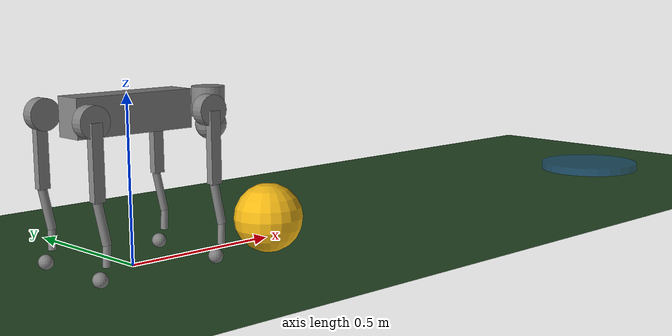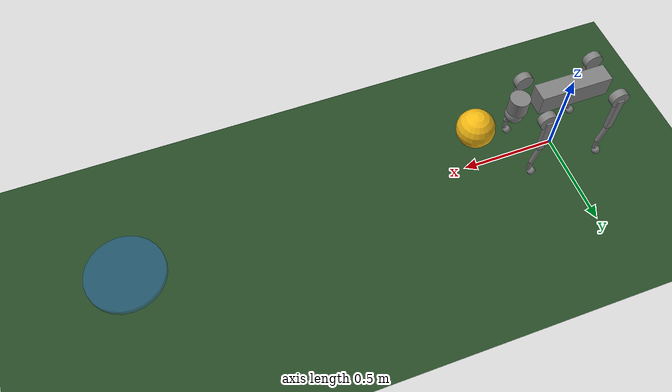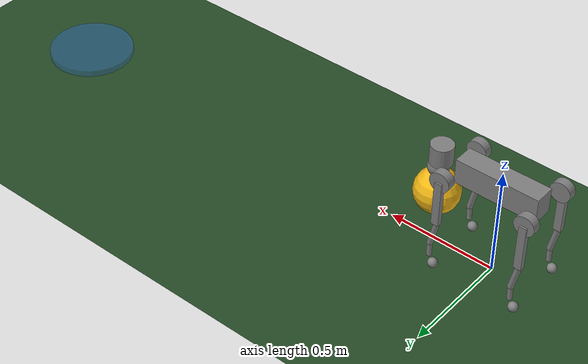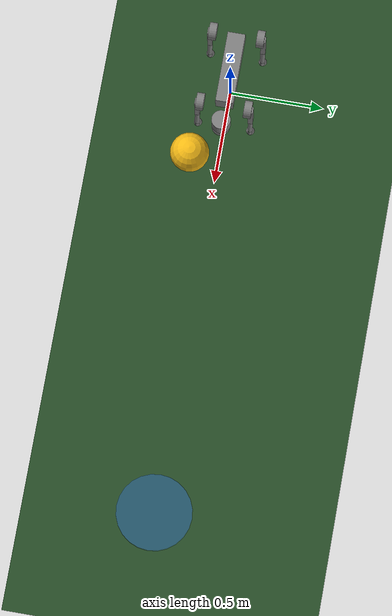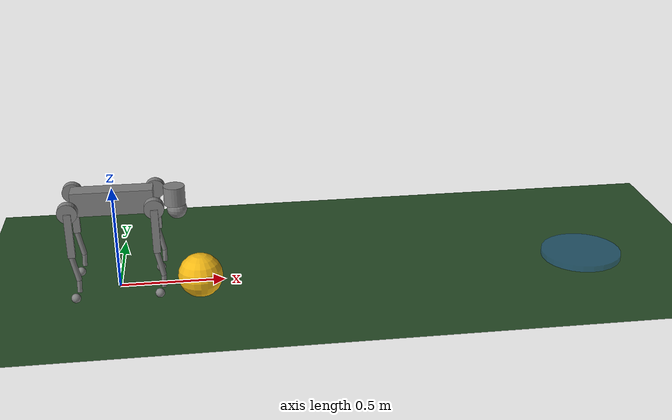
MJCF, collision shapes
<mujoco model="go2 soccer shooting">
  <include file="go2_soccer_base.xml"/>

  <statistic center="0.8 0 0.2" extent="2.8"/>

  <visual>
    <headlight diffuse="0.6 0.6 0.6" ambient="0.35 0.35 0.35" specular="0 0 0"/>
    <rgba haze="0.15 0.22 0.28 1"/>
    <global azimuth="-130" elevation="-18"/>
  </visual>

  <asset>
    <texture type="skybox" builtin="gradient" rgb1="0.34 0.48 0.62" rgb2="0.02 0.03 0.04" width="512" height="3072"/>
    <texture type="2d" name="pitch_tex" builtin="checker" mark="edge" rgb1="0.18 0.35 0.18" rgb2="0.12 0.24 0.12"
      markrgb="0.75 0.75 0.75" width="300" height="300"/>
    <material name="pitch" texture="pitch_tex" texuniform="true" texrepeat="7 7" reflectance="0.08"/>
    <material name="ball_yellow" rgba="0.95 0.72 0.08 1"/>
    <material name="goal_blue" rgba="0.15 0.45 0.95 0.35"/>
  </asset>

  <worldbody>
    <light pos="0 0 3" dir="0 0 -1" directional="true"/>
    <geom name="floor" size="0 0 0.05" type="plane" material="pitch" friction="0.95 0.03 0.003"/>

    <body name="ball" pos="0.385 -0.152 0.105">
      <freejoint name="ball_free"/>
      <geom name="ball_geom" type="sphere" size="0.105" mass="0.43" material="ball_yellow"
        friction="0.82 0.04 0.002" condim="6" priority="2"/>
    </body>

    <body name="target" pos="2.3 0 0.02">
      <geom name="goal_disc" type="cylinder" size="0.20 0.015" material="goal_blue" contype="0" conaffinity="0"/>
    </body>
  </worldbody>
</mujoco>

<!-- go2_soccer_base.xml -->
<mujoco model="go2">
  <compiler angle="radian" autolimits="true"/>

  <option cone="elliptic" impratio="100"/>

  <default>
    <default class="go2">
      <geom friction="0.6" margin="0.001" condim="1"/>
      <joint axis="0 1 0" damping="2" armature="0.01" frictionloss="0.2"/>
      <motor ctrlrange="-23.7 23.7"/>
      <default class="abduction">
        <joint axis="1 0 0" range="-1.0472 1.0472"/>
      </default>
      <default class="hip">
        <default class="front_hip">
          <joint range="-1.5708 3.4907"/>
        </default>
        <default class="back_hip">
          <joint range="-0.5236 4.5379"/>
        </default>
      </default>
      <default class="knee">
        <joint range="-2.7227 -0.83776"/>
        <motor ctrlrange="-45.43 45.43"/>
      </default>
      <default class="visual">
        <geom type="mesh" contype="0" conaffinity="0" group="2"/>
      </default>
      <default class="collision">
        <geom group="3"/>
        <default class="foot">
          <geom size="0.022" pos="-0.002 0 -0.213" priority="1" solimp="0.015 1 0.022" condim="6"
            friction="0.8 0.02 0.01"/>
        </default>
      </default>
    </default>
  </default>

  <asset>
    <material name="metal" rgba=".9 .95 .95 1"/>
    <material name="black" rgba="0 0 0 1"/>
    <material name="white" rgba="1 1 1 1"/>
    <material name="gray" rgba="0.671705 0.692426 0.774270 1"/>

    <mesh file="unitree_go2/assets/base_0.obj"/>
    <mesh file="unitree_go2/assets/base_1.obj"/>
    <mesh file="unitree_go2/assets/base_2.obj"/>
    <mesh file="unitree_go2/assets/base_3.obj"/>
    <mesh file="unitree_go2/assets/base_4.obj"/>
    <mesh file="unitree_go2/assets/hip_0.obj"/>
    <mesh file="unitree_go2/assets/hip_1.obj"/>
    <mesh file="unitree_go2/assets/thigh_0.obj"/>
    <mesh file="unitree_go2/assets/thigh_1.obj"/>
    <mesh file="unitree_go2/assets/thigh_mirror_0.obj"/>
    <mesh file="unitree_go2/assets/thigh_mirror_1.obj"/>
    <mesh file="unitree_go2/assets/calf_0.obj"/>
    <mesh file="unitree_go2/assets/calf_1.obj"/>
    <mesh file="unitree_go2/assets/calf_mirror_0.obj"/>
    <mesh file="unitree_go2/assets/calf_mirror_1.obj"/>
    <mesh file="unitree_go2/assets/foot.obj"/>
  </asset>

  <worldbody>
    <body name="base" pos="0 0 0.445" childclass="go2">
      <inertial pos="0.021112 0 -0.005366" quat="-0.000543471 0.713435 -0.00173769 0.700719" mass="6.921"
        diaginertia="0.107027 0.0980771 0.0244531"/>
      <freejoint/>
      <geom mesh="base_0" material="black" class="visual"/>
      <geom mesh="base_1" material="black" class="visual"/>
      <geom mesh="base_2" material="black" class="visual"/>
      <geom mesh="base_3" material="white" class="visual"/>
      <geom mesh="base_4" material="gray" class="visual"/>
      <geom size="0.1881 0.04675 0.057" type="box" class="collision"/>
      <geom size="0.05 0.045" pos="0.285 0 0.01" type="cylinder" class="collision"/>
      <geom size="0.047" pos="0.293 0 -0.06" class="collision"/>
      <site name="imu" pos="-0.02557 0 0.04232"/>
      <body name="FL_hip" pos="0.1934 0.0465 0">
        <inertial pos="-0.0054 0.00194 -0.000105" quat="0.497014 0.499245 0.505462 0.498237" mass="0.678"
          diaginertia="0.00088403 0.000596003 0.000479967"/>
        <joint name="FL_hip_joint" class="abduction"/>
        <geom mesh="hip_0" material="metal" class="visual"/>
        <geom mesh="hip_1" material="gray" class="visual"/>
        <geom size="0.046 0.02" pos="0 0.08 0" quat="1 1 0 0" type="cylinder" class="collision"/>
        <body name="FL_thigh" pos="0 0.0955 0">
          <inertial pos="-0.00374 -0.0223 -0.0327" quat="0.829533 0.0847635 -0.0200632 0.551623" mass="1.152"
            diaginertia="0.00594973 0.00584149 0.000878787"/>
          <joint name="FL_thigh_joint" class="front_hip"/>
          <geom mesh="thigh_0" material="metal" class="visual"/>
          <geom mesh="thigh_1" material="gray" class="visual"/>
          <geom size="0.1065 0.01225 0.017" pos="0 0 -0.1065" quat="0.707107 0 0.707107 0" type="box"
            class="collision" contype="0" conaffinity="0"/>
          <body name="FL_calf" pos="0 0 -0.213">
            <inertial pos="0.00629595 -0.000622121 -0.141417" quat="0.710672 0.00154099 -0.00450087 0.703508"
              mass="0.241352" diaginertia="0.0014901 0.00146356 5.31397e-05"/>
            <joint name="FL_calf_joint" class="knee"/>
            <geom mesh="calf_0" material="gray" class="visual"/>
            <geom mesh="calf_1" material="black" class="visual"/>
            <geom size="0.012 0.06" pos="0.008 0 -0.06" quat="0.994493 0 -0.104807 0" type="cylinder"
              class="collision"/>
            <geom size="0.011 0.0325" pos="0.02 0 -0.148" quat="0.999688 0 0.0249974 0" type="cylinder"
              class="collision"/>
            <geom pos="0 0 -0.213" mesh="foot" class="visual" material="black"/>
            <geom name="FL" class="foot"/>
          </body>
        </body>
      </body>
      <body name="FR_hip" pos="0.1934 -0.0465 0">
        <inertial pos="-0.0054 -0.00194 -0.000105" quat="0.498237 0.505462 0.499245 0.497014" mass="0.678"
          diaginertia="0.00088403 0.000596003 0.000479967"/>
        <joint name="FR_hip_joint" class="abduction"/>
        <geom mesh="hip_0" material="metal" class="visual" quat="4.63268e-05 1 0 0"/>
        <geom mesh="hip_1" material="gray" class="visual" quat="4.63268e-05 1 0 0"/>
        <geom size="0.046 0.02" pos="0 -0.08 0" quat="0.707107 0.707107 0 0" type="cylinder" class="collision"/>
        <body name="FR_thigh" pos="0 -0.0955 0">
          <inertial pos="-0.00374 0.0223 -0.0327" quat="0.551623 -0.0200632 0.0847635 0.829533" mass="1.152"
            diaginertia="0.00594973 0.00584149 0.000878787"/>
          <joint name="FR_thigh_joint" class="front_hip"/>
          <geom mesh="thigh_mirror_0" material="metal" class="visual"/>
          <geom mesh="thigh_mirror_1" material="gray" class="visual"/>
          <geom size="0.1065 0.01225 0.017" pos="0 0 -0.1065" quat="0.707107 0 0.707107 0" type="box"
            class="collision" contype="0" conaffinity="0"/>
          <body name="FR_calf" pos="0 0 -0.213">
            <inertial pos="0.00629595 0.000622121 -0.141417" quat="0.703508 -0.00450087 0.00154099 0.710672"
              mass="0.241352" diaginertia="0.0014901 0.00146356 5.31397e-05"/>
            <joint name="FR_calf_joint" class="knee"/>
            <geom mesh="calf_mirror_0" material="gray" class="visual"/>
            <geom mesh="calf_mirror_1" material="black" class="visual"/>
            <geom size="0.013 0.06" pos="0.01 0 -0.06" quat="0.995004 0 -0.0998334 0" type="cylinder"
              class="collision" contype="0" conaffinity="0"/>
            <geom size="0.011 0.0325" pos="0.02 0 -0.148" quat="0.999688 0 0.0249974 0" type="cylinder"
              class="collision" contype="0" conaffinity="0"/>
            <geom pos="0 0 -0.213" mesh="foot" class="visual" material="black"/>
            <geom name="FR" class="foot"/>
          </body>
        </body>
      </body>
      <body name="RL_hip" pos="-0.1934 0.0465 0">
        <inertial pos="0.0054 0.00194 -0.000105" quat="0.505462 0.498237 0.497014 0.499245" mass="0.678"
          diaginertia="0.00088403 0.000596003 0.000479967"/>
        <joint name="RL_hip_joint" class="abduction"/>
        <geom mesh="hip_0" material="metal" class="visual" quat="4.63268e-05 0 1 0"/>
        <geom mesh="hip_1" material="gray" class="visual" quat="4.63268e-05 0 1 0"/>
        <geom size="0.046 0.02" pos="0 0.08 0" quat="0.707107 0.707107 0 0" type="cylinder" class="collision"/>
        <body name="RL_thigh" pos="0 0.0955 0">
          <inertial pos="-0.00374 -0.0223 -0.0327" quat="0.829533 0.0847635 -0.0200632 0.551623" mass="1.152"
            diaginertia="0.00594973 0.00584149 0.000878787"/>
          <joint name="RL_thigh_joint" class="back_hip"/>
          <geom mesh="thigh_0" material="metal" class="visual"/>
          <geom mesh="thigh_1" material="gray" class="visual"/>
          <geom size="0.1065 0.01225 0.017" pos="0 0 -0.1065" quat="0.707107 0 0.707107 0" type="box"
            class="collision"/>
          <body name="RL_calf" pos="0 0 -0.213">
            <inertial pos="0.00629595 -0.000622121 -0.141417" quat="0.710672 0.00154099 -0.00450087 0.703508"
              mass="0.241352" diaginertia="0.0014901 0.00146356 5.31397e-05"/>
            <joint name="RL_calf_joint" class="knee"/>
            <geom mesh="calf_0" material="gray" class="visual"/>
            <geom mesh="calf_1" material="black" class="visual"/>
            <geom size="0.013 0.06" pos="0.01 0 -0.06" quat="0.995004 0 -0.0998334 0" type="cylinder"
              class="collision"/>
            <geom size="0.011 0.0325" pos="0.02 0 -0.148" quat="0.999688 0 0.0249974 0" type="cylinder"
              class="collision"/>
            <geom pos="0 0 -0.213" mesh="foot" class="visual" material="black"/>
            <geom name="RL" class="foot"/>
          </body>
        </body>
      </body>
      <body name="RR_hip" pos="-0.1934 -0.0465 0">
        <inertial pos="0.0054 -0.00194 -0.000105" quat="0.499245 0.497014 0.498237 0.505462" mass="0.678"
          diaginertia="0.00088403 0.000596003 0.000479967"/>
        <joint name="RR_hip_joint" class="abduction"/>
        <geom mesh="hip_0" material="metal" class="visual" quat="2.14617e-09 4.63268e-05 4.63268e-05 -1"/>
        <geom mesh="hip_1" material="gray" class="visual" quat="2.14617e-09 4.63268e-05 4.63268e-05 -1"/>
        <geom size="0.046 0.02" pos="0 -0.08 0" quat="0.707107 0.707107 0 0" type="cylinder" class="collision"/>
        <body name="RR_thigh" pos="0 -0.0955 0">
          <inertial pos="-0.00374 0.0223 -0.0327" quat="0.551623 -0.0200632 0.0847635 0.829533" mass="1.152"
            diaginertia="0.00594973 0.00584149 0.000878787"/>
          <joint name="RR_thigh_joint" class="back_hip"/>
          <geom mesh="thigh_mirror_0" material="metal" class="visual"/>
          <geom mesh="thigh_mirror_1" material="gray" class="visual"/>
          <geom size="0.1065 0.01225 0.017" pos="0 0 -0.1065" quat="0.707107 0 0.707107 0" type="box"
            class="collision"/>
          <body name="RR_calf" pos="0 0 -0.213">
            <inertial pos="0.00629595 0.000622121 -0.141417" quat="0.703508 -0.00450087 0.00154099 0.710672"
              mass="0.241352" diaginertia="0.0014901 0.00146356 5.31397e-05"/>
            <joint name="RR_calf_joint" class="knee"/>
            <geom mesh="calf_mirror_0" material="gray" class="visual"/>
            <geom mesh="calf_mirror_1" material="black" class="visual"/>
            <geom size="0.013 0.06" pos="0.01 0 -0.06" quat="0.995004 0 -0.0998334 0" type="cylinder"
              class="collision"/>
            <geom size="0.011 0.0325" pos="0.02 0 -0.148" quat="0.999688 0 0.0249974 0" type="cylinder"
              class="collision"/>
            <geom pos="0 0 -0.213" mesh="foot" class="visual" material="black"/>
            <geom name="RR" class="foot"/>
          </body>
        </body>
      </body>
    </body>
  </worldbody>

  <actuator>
    <motor class="abduction" name="FL_hip" joint="FL_hip_joint"/>
    <motor class="hip" name="FL_thigh" joint="FL_thigh_joint"/>
    <motor class="knee" name="FL_calf" joint="FL_calf_joint"/>
    <motor class="abduction" name="FR_hip" joint="FR_hip_joint"/>
    <motor class="hip" name="FR_thigh" joint="FR_thigh_joint"/>
    <motor class="knee" name="FR_calf" joint="FR_calf_joint"/>
    <motor class="abduction" name="RL_hip" joint="RL_hip_joint"/>
    <motor class="hip" name="RL_thigh" joint="RL_thigh_joint"/>
    <motor class="knee" name="RL_calf" joint="RL_calf_joint"/>
    <motor class="abduction" name="RR_hip" joint="RR_hip_joint"/>
    <motor class="hip" name="RR_thigh" joint="RR_thigh_joint"/>
    <motor class="knee" name="RR_calf" joint="RR_calf_joint"/>
  </actuator>

  <keyframe>
    <key name="home" qpos="0 0 0.27 1 0 0 0 0 0.9 -1.8 0 0.9 -1.8 0 0.9 -1.8 0 0.9 -1.8"
      ctrl="0 0.9 -1.8 0 0.9 -1.8 0 0.9 -1.8 0 0.9 -1.8"/>
  </keyframe>
</mujoco>
